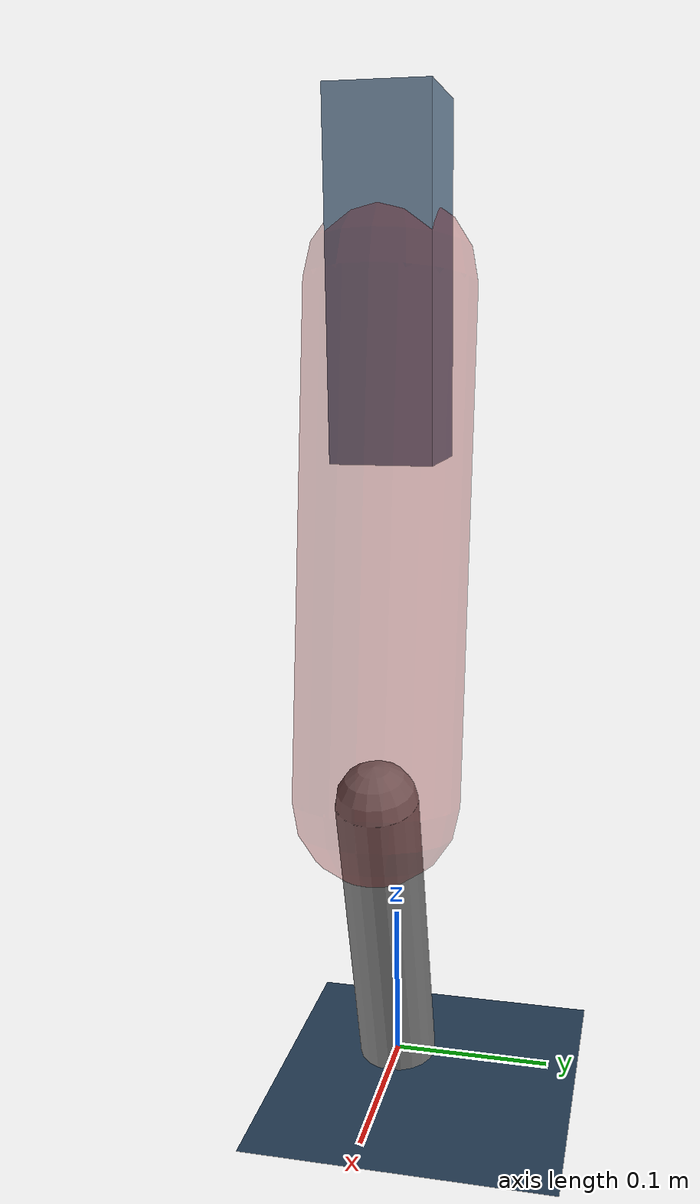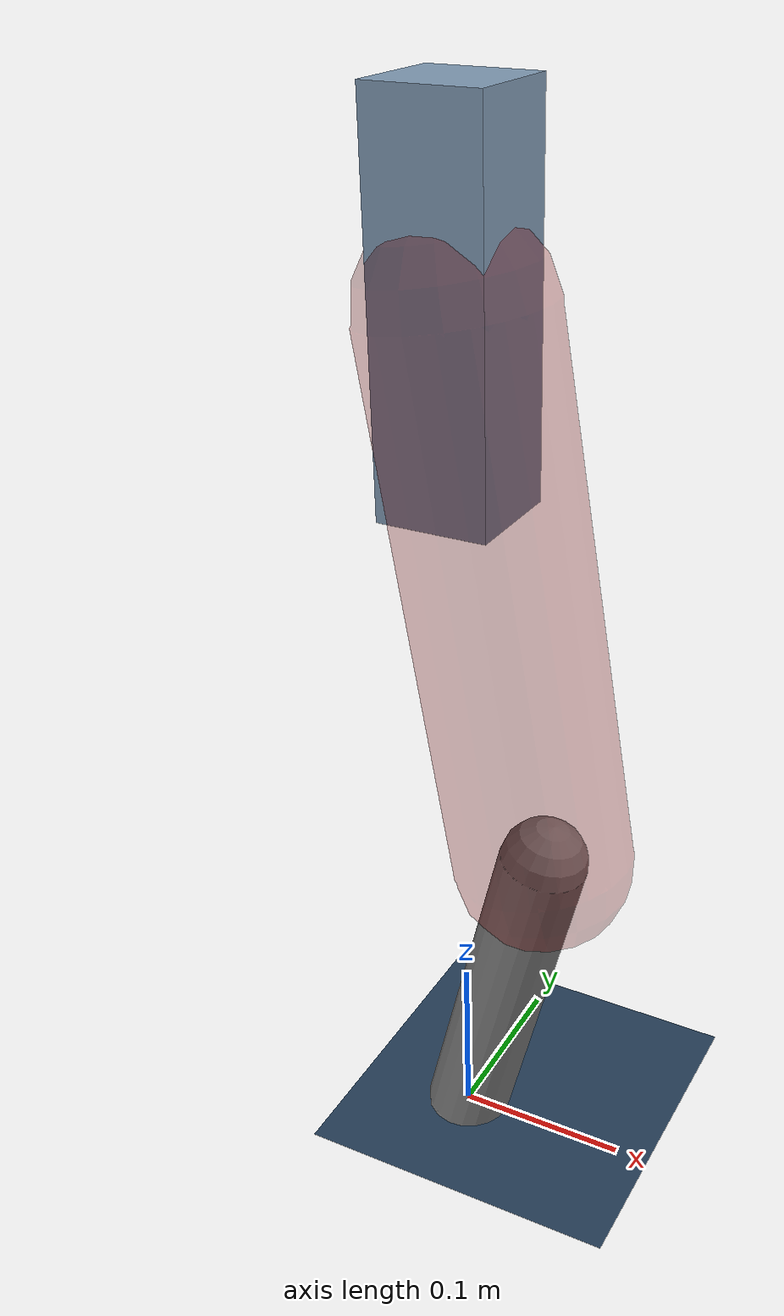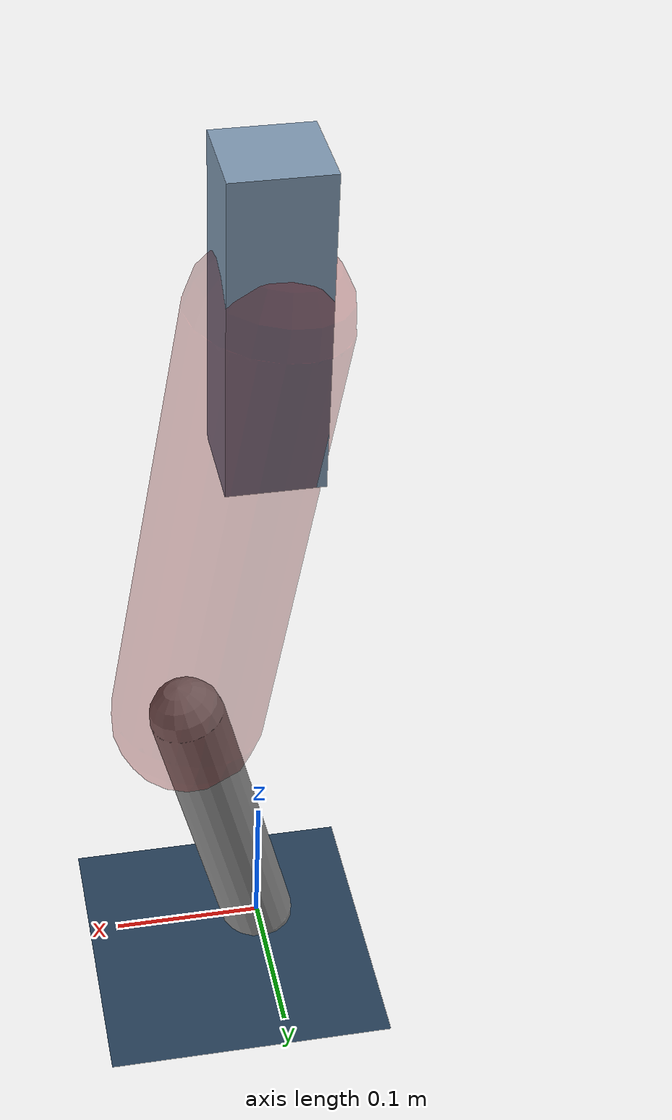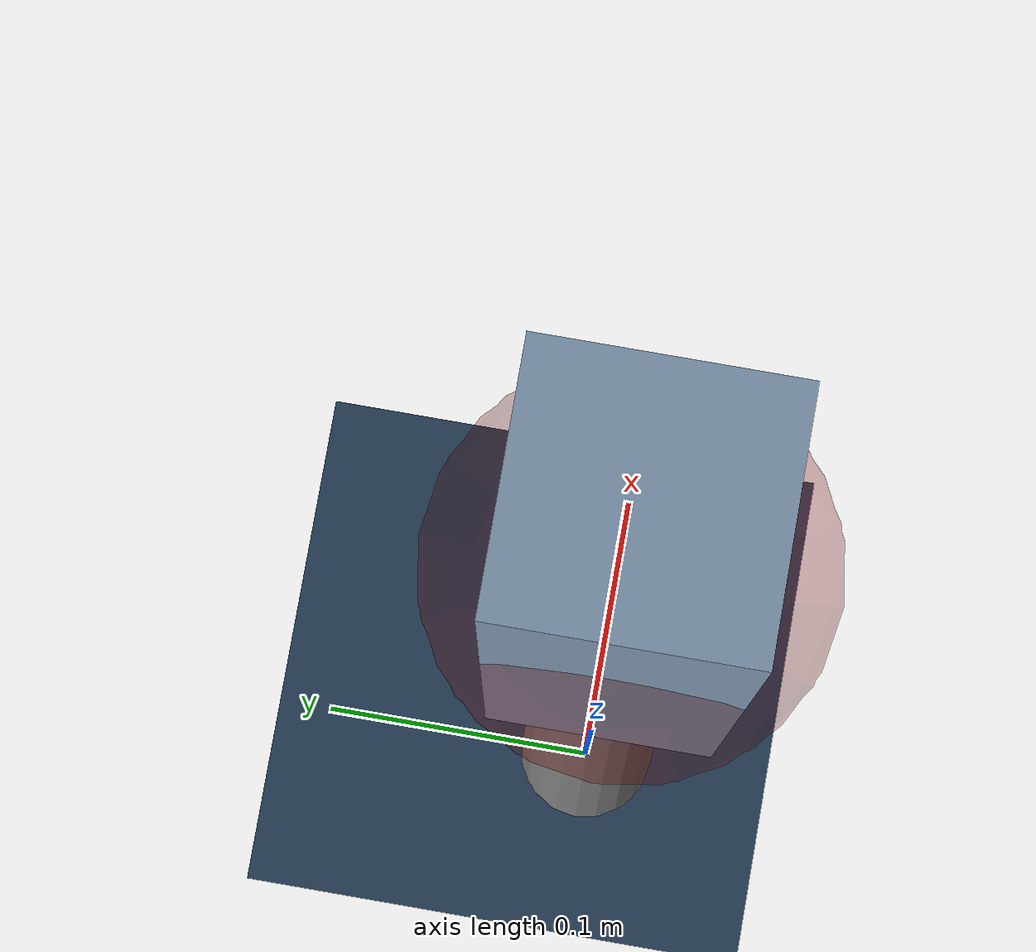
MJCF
<mujoco model="Hopper2D">
	<compiler inertiafromgeom="true" angle="radian" />
	<option timestep="0.001" integrator="implicit" cone="elliptic" solver="Newton" tolerance="1e-10" />

	<default>
		<geom contype="1" conaffinity="1" condim="3" friction="2 0.005 0.0001" solref="0.005 1" />
		<joint limited="true" damping="0.1" />
	</default>

	<asset>
		<texture name="skybox" type="skybox" builtin="gradient" rgb1=".4 .6 .8" rgb2="0 0 0" width="800" height="800" />
		<texture name="grid" type="2d" builtin="checker" rgb1=".1 .2 .3" rgb2=".2 .3 .4" width="300" height="300" mark="edge" markrgb=".2 .3 .4" />
		<material name="ground" texture="grid" texrepeat="1 1" texuniform="true" reflectance="0.1" />
		<material name="leg" rgba="0.5 0.6 0.7 1" />
	</asset>

	<worldbody>

		<geom name="floor" type="plane" size="5 5 0.25" material="ground" />

		<light directional="false" diffuse="0.8 0.8 0.8" specular="0.3 0.3 0.3" pos="0 0 2" dir="0 0 -1" />
		<light mode="targetbodycom" target="base" directional="false" diffuse="0.8 0.8 0.8" specular="0.3 0.3 0.3" pos="0 0 2" dir="0 0 -1" />

		<camera name="fixed" pos="0 -2 1" xyaxes="1 0 0 0 0 1" />
		<camera name="tracking" mode="trackcom" pos="0 -3 1" />

		<body name="root" pos="0 0 0.49435686924182587">
			<joint name="slide_x" type="slide" axis="1 0 0" range="-100 100" />
			<joint name="slide_z" type="slide" axis="0 0 1" range="0 10" />

			<body name="base" pos="0 0 0">
				<geom name="torso" type="box" size="0.03 0.03 0.1" mass="2.5919999999999996" material="leg" />

				<body name="link1" pos="0 0 0" euler="0 1.4070162821567203 0">
					<joint type="hinge" axis="0 -1 0" pos="0 0 0" name="hinge1" limited="true" range="-3.14 3.14" stiffness="0" damping="0.1" />
					<geom name="thigh" type="capsule" fromto="0 0 0 0.3005370814539655 0 0" size="0.05" rgba="0.5 0 0 0.3" mass="0.9901501199257069" />

					<body name="link2" pos="0.3005370814539655 0 0" euler="0 0.40657787601496775 0">
						<joint type="hinge" axis="0 -1 0" pos="0 0 0" name="hinge2" limited="true" range="-3.14 3.14" stiffness="0" damping="0.1" />
						<geom name="shank" type="capsule" fromto="0 0 0 0.20381978778786033 0 0" size="0.025" mass="0.4041378090090743" />

					</body>
				</body>
			</body>
		</body>
	</worldbody>

	<actuator>
		<motor name="torque1" joint="hinge1" ctrlrange="-85.99334468582298 85.99334468582298" ctrllimited="true" gear="1" />
		<motor name="torque2" joint="hinge2" ctrlrange="-107.62642514576393 107.62642514576393" ctrllimited="true" gear="1" />
	</actuator>
</mujoco>
